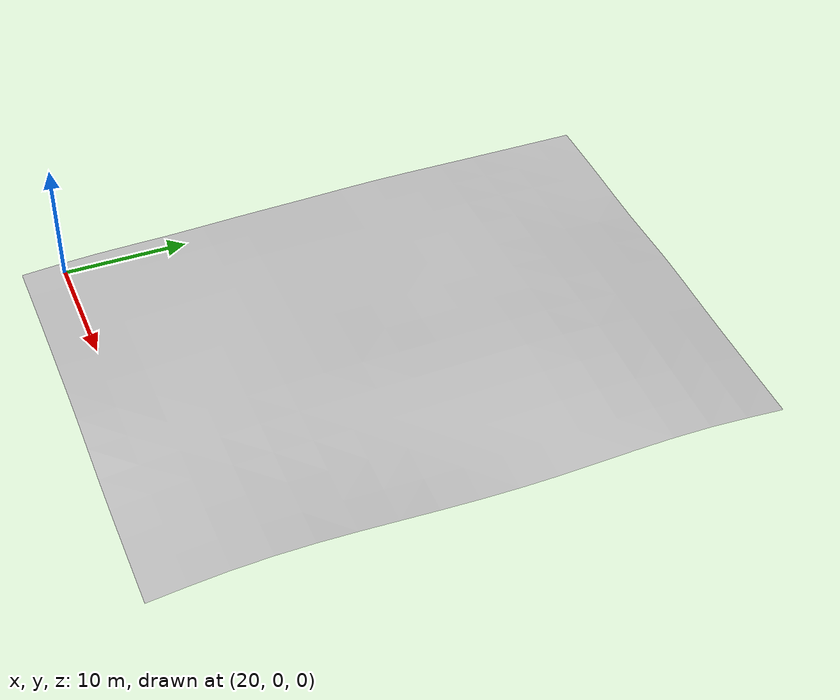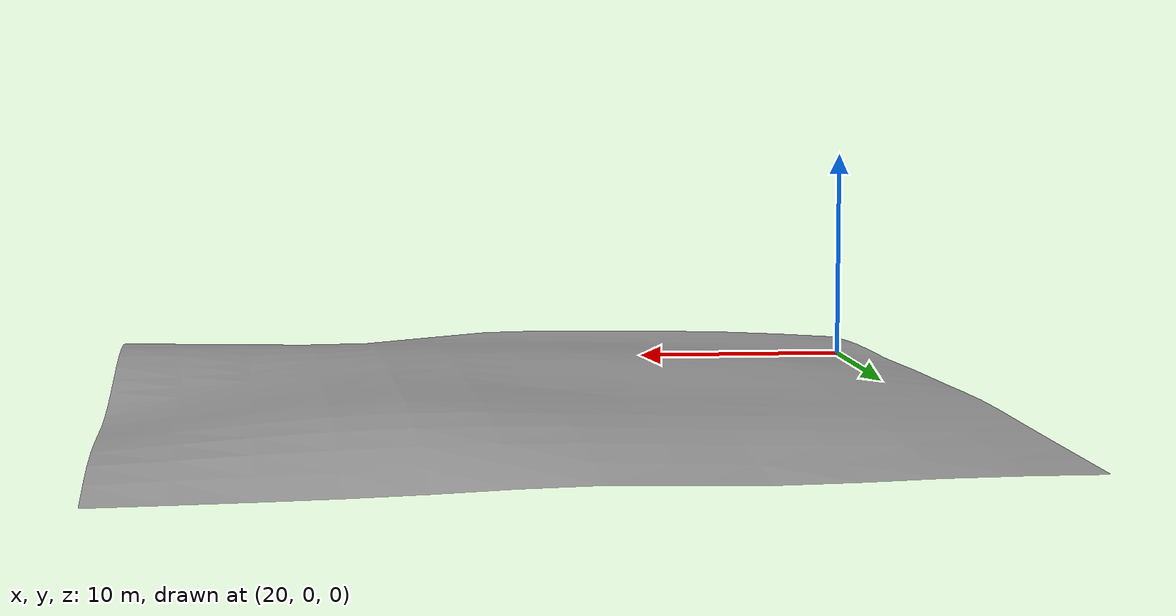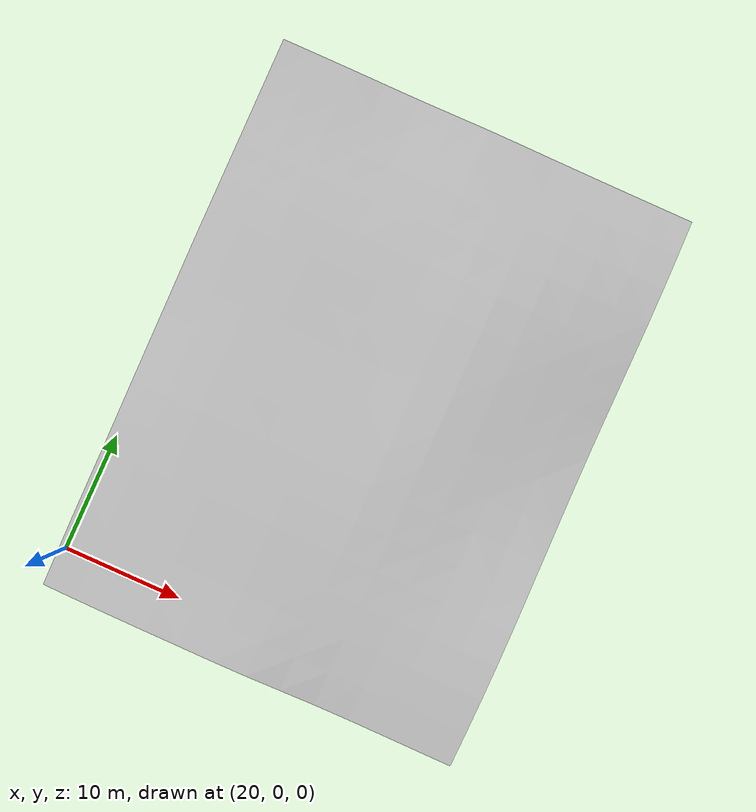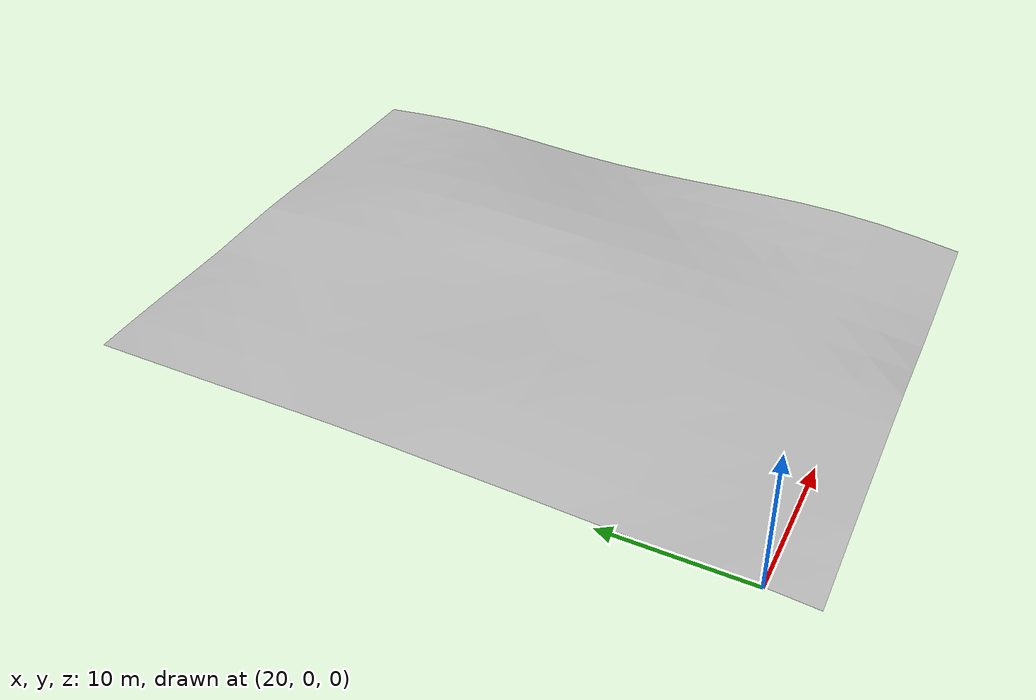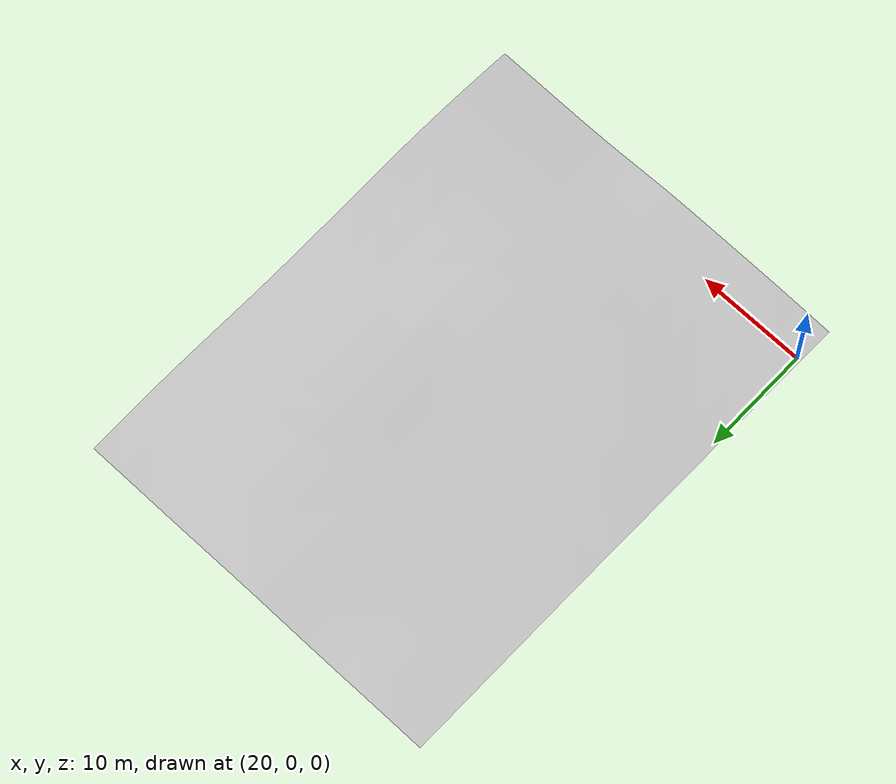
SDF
<?xml version="1.0"?>
<sdf version="1.6">
  <model name="agriculture_ground">
    <static>true</static>
    <link name="link">
      <visual name="visual">
        <geometry>
          <mesh>
            <uri>model://agriculture_ground/meshes/agriculture_ground.dae</uri>
            <scale>1 1 1</scale>
          </mesh>
        </geometry>
      </visual>
      <collision name="collision">
        <geometry>
          <mesh>
            <uri>model://agriculture_ground/meshes/agriculture_ground.dae</uri>
            <scale>1 1 1</scale>
          </mesh>
        </geometry>
      </collision>
    </link>
  </model>
</sdf>
